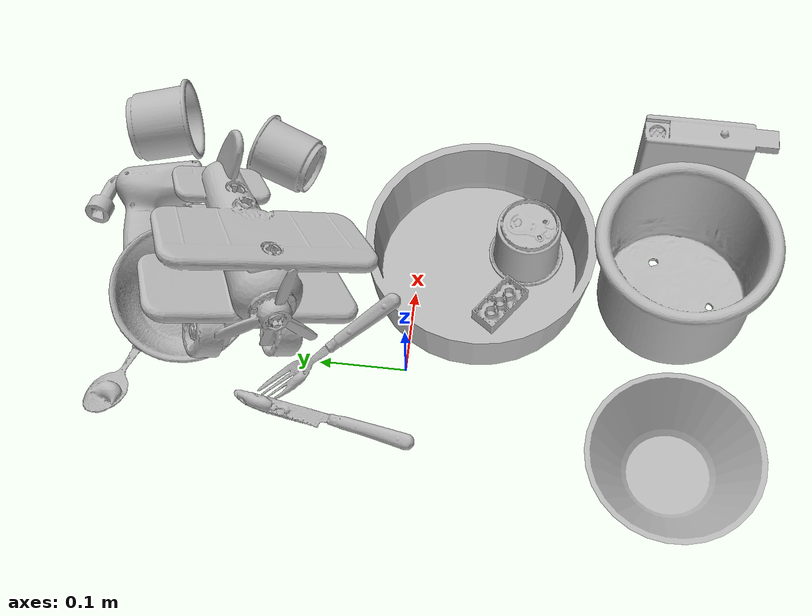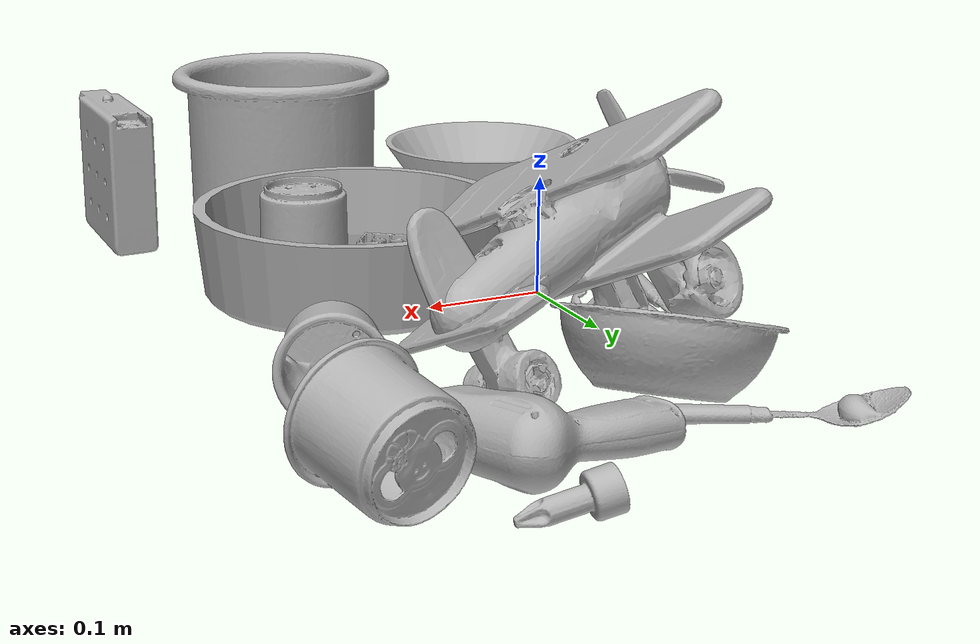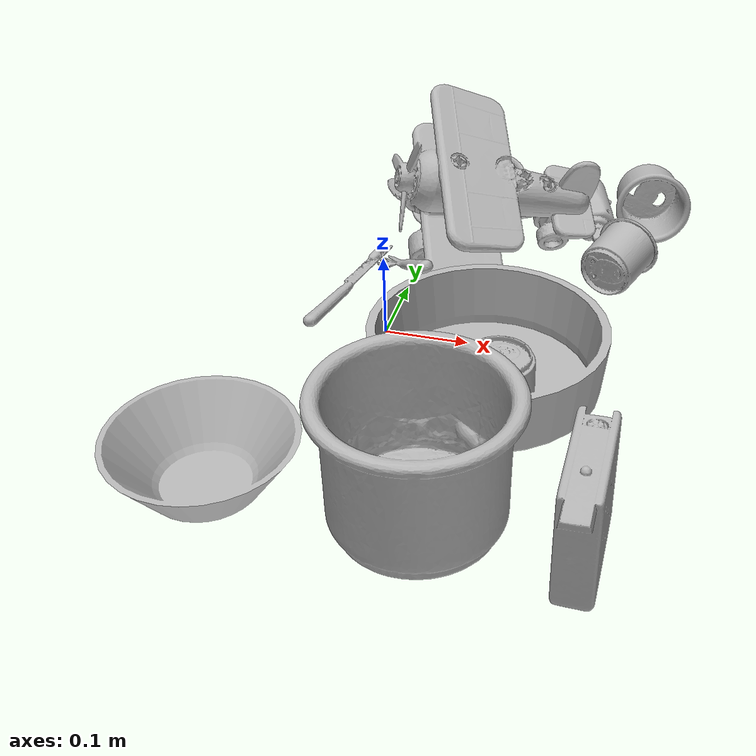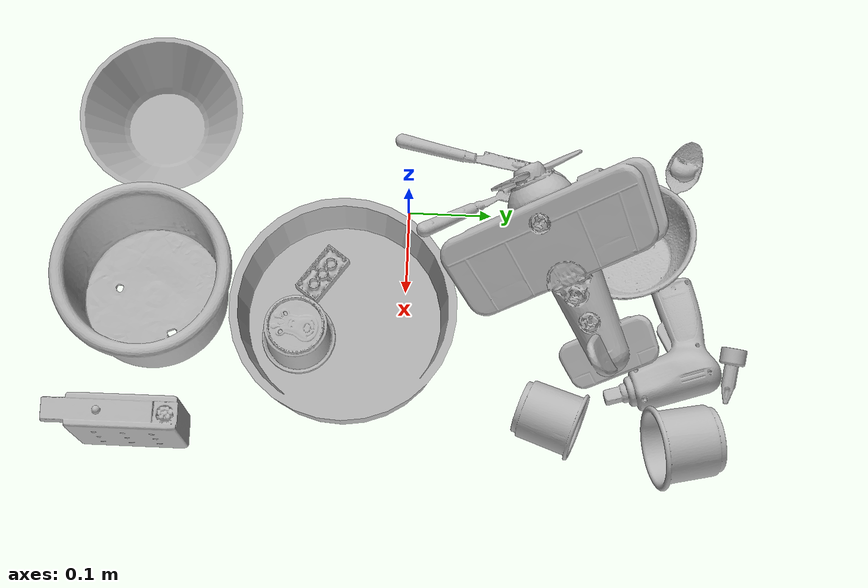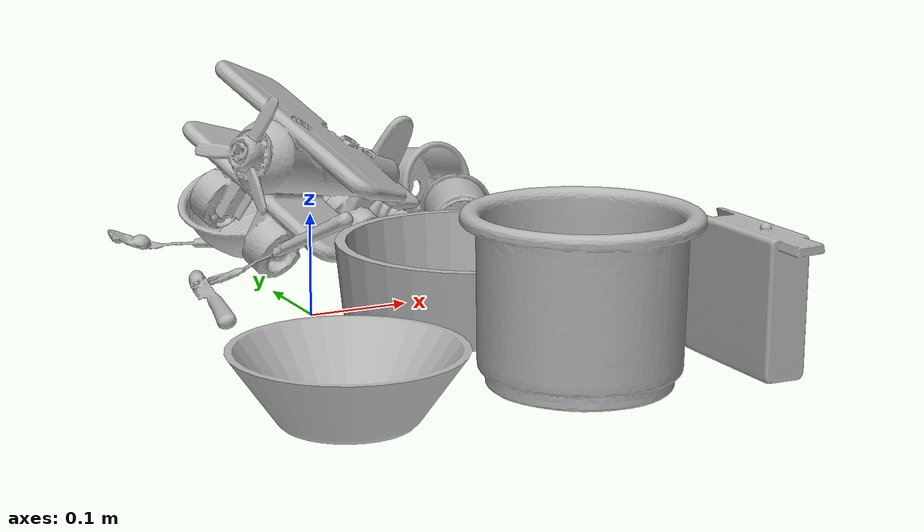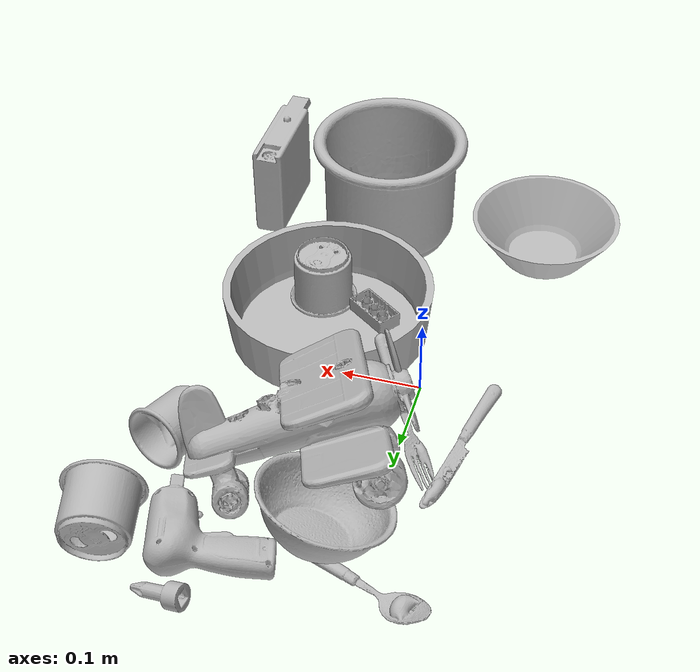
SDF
<sdf version="1.4">
  <world name="default">
    <light name="light1" type="point">
      <pose>0 0 1 0 0 0</pose>
      <diffuse>3 3 3 1</diffuse>
      <specular>3 3 3 1</specular>
    </light>
    <light name="light2" type="point">
      <pose>0 0.5 2 0 0 0</pose>
      <diffuse>1 1 1 1</diffuse>
      <specular>1 1 1 1</specular>
    </light>
    <light name="light3" type="point">
      <pose>0 0.5 2 0 0 0</pose>
      <diffuse>3 3 3 1</diffuse>
      <specular>3 3 3 1</specular>
    </light>
    <scene>
      <ambient>0.7 0.7 0.7</ambient>
    </scene>
    <model name="plate1">
      <link name="link_plate1">
        <collision name="default">
          <geometry>
            <mesh>
              <uri>model://pan_tefal/collision_meshes/collision.obj</uri>
              <scale>1.0 1.0 1.0</scale>
            </mesh>
          </geometry>
          <surface>
            <friction>
              <ode>
                <mu>0.5</mu>
                <mu2>0.5</mu2>
              </ode>
            </friction>
          <contact>
        <ode>
            <max_vel>0</max_vel>
            <min_depth>0.0001</min_depth>
            <kp>1e8</kp>
        </ode>
    </contact></surface>
        </collision>
        <visual name="default">
          <geometry>
            <mesh>
              <uri>model://pan_tefal/visual_meshes/visual.dae</uri>
              <scale>1.0 1.0 1.0</scale>
            </mesh>
          </geometry>
        </visual>
        <inertial>
          <mass>1.2414644956588745</mass>
          <pose>-0.0001800298341549933 3.278589065303095e-05 -0.00851493515074253 0.0008190165640447202 -0.0003301348973125405 -0.33185319573483557</pose>
          <inertia>
            <ixx>0.00856977</ixx>
            <iyy>0.008625018</iyy>
            <izz>0.015775295</izz>
            <ixy>0</ixy>
            <ixz>0</ixz>
            <iyz>0</iyz>
          </inertia>
        </inertial>
      </link>
      <pose>0.13853561878204346 -0.07104324549436569 0.038050003349781036 -1.0277268653726338e-08 3.07782101069081e-08 0.6571660322161916</pose>
    </model>
    <model name="cup1">
      <link name="link_cup1">
        <collision name="default">
          <geometry>
            <mesh>
              <uri>model://j_cups/collision_meshes/collision.obj</uri>
              <scale>2.0 2.0 2.0</scale>
            </mesh>
          </geometry>
          <surface>
            <friction>
              <ode>
                <mu>0.5</mu>
                <mu2>0.5</mu2>
              </ode>
            </friction>
          <contact>
        <ode>
            <max_vel>0</max_vel>
            <min_depth>0.0001</min_depth>
            <kp>1e8</kp>
        </ode>
    </contact></surface>
        </collision>
        <visual name="default">
          <geometry>
            <mesh>
              <uri>model://j_cups/visual_meshes/visual.dae</uri>
              <scale>2.0 2.0 2.0</scale>
            </mesh>
          </geometry>
        </visual>
        <inertial>
          <mass>0.42814481258392334</mass>
          <pose>0.0012329709716141224 0.0010797895956784487 -0.002695801667869091 0.030303634199985552 0.037580068488308346 0.43868666904956827</pose>
          <inertia>
            <ixx>0.0025146077</ixx>
            <iyy>0.0025407567</iyy>
            <izz>0.0028988216</izz>
            <ixy>0</ixy>
            <ixz>0</ixz>
            <iyz>0</iyz>
          </inertia>
        </inertial>
      </link>
      <pose>0.12036195397377014 -0.29757559299468994 0.07597799599170685 1.5375587551067217e-08 -6.754720383126846e-08 1.1005910182369152</pose>
    </model>
    <model name="silverware1">
      <link name="link_silverware1">
        <collision name="default">
          <geometry>
            <mesh>
              <uri>model://fork/collision_meshes/collision.obj</uri>
              <scale>1.0 1.0 1.0</scale>
            </mesh>
          </geometry>
          <surface>
            <friction>
              <ode>
                <mu>0.5</mu>
                <mu2>0.5</mu2>
              </ode>
            </friction>
          <contact>
        <ode>
            <max_vel>0</max_vel>
            <min_depth>0.0001</min_depth>
            <kp>1e8</kp>
        </ode>
    </contact></surface>
        </collision>
        <visual name="default">
          <geometry>
            <mesh>
              <uri>model://fork/visual_meshes/visual.dae</uri>
              <scale>1.0 1.0 1.0</scale>
            </mesh>
          </geometry>
        </visual>
        <inertial>
          <mass>0.013809523545205593</mass>
          <pose>-0.029570044949650764 0.0004658822435885668 0.00032188615296036005 -0.013551743215227608 -0.010977837587661193 0.014453899243146438</pose>
          <inertia>
            <ixx>4.84102e-07</ixx>
            <iyy>3.6052697e-05</iyy>
            <izz>3.6269223e-05</izz>
            <ixy>0</ixy>
            <ixz>0</ixz>
            <iyz>0</iyz>
          </inertia>
        </inertial>
      </link>
      <pose>-3.389082849025726e-05 0.0853070467710495 0.042986802756786346 -0.1720779266581978 0.4915731306213642 2.158712578629055</pose>
    </model>
    <model name="silverware2">
      <link name="link_silverware2">
        <collision name="default">
          <geometry>
            <mesh>
              <uri>model://knife/collision_meshes/collision.obj</uri>
              <scale>1.0 1.0 1.0</scale>
            </mesh>
          </geometry>
          <surface>
            <friction>
              <ode>
                <mu>0.5</mu>
                <mu2>0.5</mu2>
              </ode>
            </friction>
          <contact>
        <ode>
            <max_vel>0</max_vel>
            <min_depth>0.0001</min_depth>
            <kp>1e8</kp>
        </ode>
    </contact></surface>
        </collision>
        <visual name="default">
          <geometry>
            <mesh>
              <uri>model://knife/visual_meshes/visual.dae</uri>
              <scale>1.0 1.0 1.0</scale>
            </mesh>
          </geometry>
        </visual>
        <inertial>
          <mass>0.021972408518195152</mass>
          <pose>-0.023785250261425972 0.0015275123296305537 5.0620161346159875e-05 0.07305788583029697 0.01724841890740089 -0.007409824444555058</pose>
          <inertia>
            <ixx>6.2366604e-07</ixx>
            <iyy>8.441444e-05</iyy>
            <izz>8.46153e-05</izz>
            <ixy>0</ixy>
            <ixz>0</ixz>
            <iyz>0</iyz>
          </inertia>
        </inertial>
      </link>
      <pose>-0.07282426953315735 0.08596955984830856 0.005845934152603149 2.880436081520243 0.025318182085621314 1.382429017965285</pose>
    </model>
    <model name="silverware3">
      <link name="link_silverware3">
        <collision name="default">
          <geometry>
            <mesh>
              <uri>model://spoon/collision_meshes/collision.obj</uri>
              <scale>1.0 1.0 1.0</scale>
            </mesh>
          </geometry>
          <surface>
            <friction>
              <ode>
                <mu>0.5</mu>
                <mu2>0.5</mu2>
              </ode>
            </friction>
          <contact>
        <ode>
            <max_vel>0</max_vel>
            <min_depth>0.0001</min_depth>
            <kp>1e8</kp>
        </ode>
    </contact></surface>
        </collision>
        <visual name="default">
          <geometry>
            <mesh>
              <uri>model://spoon/visual_meshes/visual.dae</uri>
              <scale>1.0 1.0 1.0</scale>
            </mesh>
          </geometry>
        </visual>
        <inertial>
          <mass>0.026694269850850105</mass>
          <pose>-0.005526325199753046 -0.0016034168656915426 -0.0007271653739735484 0.035216710718480135 -0.03906584501417282 0.00615060951780049</pose>
          <inertia>
            <ixx>1.484779e-06</ixx>
            <iyy>0.000101570804</iyy>
            <izz>0.000102303035</izz>
            <ixy>0</ixy>
            <ixz>0</ixz>
            <iyz>0</iyz>
          </inertia>
        </inertial>
      </link>
      <pose>-0.007980858907103539 0.3091663122177124 0.008385262452065945 0.006729118480922514 0.026892968451171426 2.7751250977209154</pose>
    </model>
    <model name="cup3">
      <link name="link_cup3">
        <collision name="default">
          <geometry>
            <mesh>
              <uri>model://f_cups/collision_meshes/collision.obj</uri>
              <scale>1.0 1.0 1.0</scale>
            </mesh>
          </geometry>
          <surface>
            <friction>
              <ode>
                <mu>0.5</mu>
                <mu2>0.5</mu2>
              </ode>
            </friction>
          <contact>
        <ode>
            <max_vel>0</max_vel>
            <min_depth>0.0001</min_depth>
            <kp>1e8</kp>
        </ode>
    </contact></surface>
        </collision>
        <visual name="default">
          <geometry>
            <mesh>
              <uri>model://f_cups/visual_meshes/visual.dae</uri>
              <scale>1.0 1.0 1.0</scale>
            </mesh>
          </geometry>
        </visual>
        <inertial>
          <mass>0.09255705773830414</mass>
          <pose>-0.0031714672222733498 -0.0006240062648430467 -0.0036555363330990076 0.7862294428046025 -0.26079256257201844 -0.18237393521905715</pose>
          <inertia>
            <ixx>8.700612e-05</ixx>
            <iyy>9.127041e-05</iyy>
            <izz>9.501506e-05</izz>
            <ixy>0</ixy>
            <ixz>0</ixz>
            <iyz>0</iyz>
          </inertia>
        </inertial>
      </link>
      <pose>0.2504325807094574 0.17254196107387543 0.037158966064453125 1.440482371977233 -0.8178152064597399 2.887140721977386</pose>
    </model>
    <model name="cup4">
      <link name="link_cup4">
        <collision name="default">
          <geometry>
            <mesh>
              <uri>model://g_cups/collision_meshes/collision.obj</uri>
              <scale>1.0 1.0 1.0</scale>
            </mesh>
          </geometry>
          <surface>
            <friction>
              <ode>
                <mu>0.5</mu>
                <mu2>0.5</mu2>
              </ode>
            </friction>
          <contact>
        <ode>
            <max_vel>0</max_vel>
            <min_depth>0.0001</min_depth>
            <kp>1e8</kp>
        </ode>
    </contact></surface>
        </collision>
        <visual name="default">
          <geometry>
            <mesh>
              <uri>model://g_cups/visual_meshes/visual.dae</uri>
              <scale>1.0 1.0 1.0</scale>
            </mesh>
          </geometry>
        </visual>
        <inertial>
          <mass>0.09045539051294327</mass>
          <pose>-0.0007946272380650043 -4.206356970826164e-05 -0.0021329366136342287 -0.21382427470227655 -0.31410603394020525 0.31120189460551634</pose>
          <inertia>
            <ixx>0.000105581705</ixx>
            <iyy>0.000105222556</iyy>
            <izz>0.000109364446</izz>
            <ixy>0</ixy>
            <ixz>0</ixz>
            <iyz>0</iyz>
          </inertia>
        </inertial>
      </link>
      <pose>0.16257542371749878 -0.12451474368572235 0.04475902020931244 3.1390757266993767 -0.0009050775068456375 3.0403901791496906</pose>
    </model>
    <model name="cup5">
      <link name="link_cup5">
        <collision name="default">
          <geometry>
            <mesh>
              <uri>model://i_cups/collision_meshes/collision.obj</uri>
              <scale>1.0 1.0 1.0</scale>
            </mesh>
          </geometry>
          <surface>
            <friction>
              <ode>
                <mu>0.5</mu>
                <mu2>0.5</mu2>
              </ode>
            </friction>
          <contact>
        <ode>
            <max_vel>0</max_vel>
            <min_depth>0.0001</min_depth>
            <kp>1e8</kp>
        </ode>
    </contact></surface>
        </collision>
        <visual name="default">
          <geometry>
            <mesh>
              <uri>model://i_cups/visual_meshes/visual.dae</uri>
              <scale>1.0 1.0 1.0</scale>
            </mesh>
          </geometry>
        </visual>
        <inertial>
          <mass>0.0815454050898552</mass>
          <pose>0.0001123997790273279 0.00016797320859041065 -0.0008579009445384145 -0.02898318353055437 -0.03987301779891007 -0.3459082462056558</pose>
          <inertia>
            <ixx>0.0001129008</ixx>
            <iyy>0.000113895556</iyy>
            <izz>0.00012618494</izz>
            <ixy>0</ixy>
            <ixz>0</ixz>
            <iyz>0</iyz>
          </inertia>
        </inertial>
      </link>
      <pose>0.2769671678543091 0.3284604549407959 0.04508911073207855 -1.4027187878217617 -0.7346731525647001 -3.0402881245757407</pose>
    </model>
    <model name="bowl1">
      <link name="link_bowl1">
        <collision name="default">
          <geometry>
            <mesh>
              <uri>model://bowl/collision_meshes/collision.obj</uri>
              <scale>1.0 1.0 1.0</scale>
            </mesh>
          </geometry>
          <surface>
            <friction>
              <ode>
                <mu>0.5</mu>
                <mu2>0.5</mu2>
              </ode>
            </friction>
          <contact>
        <ode>
            <max_vel>0</max_vel>
            <min_depth>0.0001</min_depth>
            <kp>1e8</kp>
        </ode>
    </contact></surface>
        </collision>
        <visual name="default">
          <geometry>
            <mesh>
              <uri>model://bowl/visual_meshes/visual.dae</uri>
              <scale>1.0 1.0 1.0</scale>
            </mesh>
          </geometry>
        </visual>
        <inertial>
          <mass>0.1349102407693863</mass>
          <pose>0.00020445192058105022 -0.0010302069131284952 -0.0008042648551054299 -0.01576408127006171 0.01454679335072616 0.7140405111038781</pose>
          <inertia>
            <ixx>0.00030989948</ixx>
            <iyy>0.00030297515</iyy>
            <izz>0.0005213576</izz>
            <ixy>0</ixy>
            <ixz>0</ixz>
            <iyz>0</iyz>
          </inertia>
        </inertial>
      </link>
      <pose>0.04561837017536163 0.2648700475692749 0.04118546098470688 0.24226021697241143 0.2633026880789279 -1.5892987798862641</pose>
    </model>
    <model name="bowl2">
      <link name="link_bowl2">
        <collision name="default">
          <geometry>
            <mesh>
              <uri>model://bowl_a/collision_meshes/collision.obj</uri>
              <scale>1.0 1.0 1.0</scale>
            </mesh>
          </geometry>
          <surface>
            <friction>
              <ode>
                <mu>0.5</mu>
                <mu2>0.5</mu2>
              </ode>
            </friction>
          <contact>
        <ode>
            <max_vel>0</max_vel>
            <min_depth>0.0001</min_depth>
            <kp>1e8</kp>
        </ode>
    </contact></surface>
        </collision>
        <visual name="default">
          <geometry>
            <mesh>
              <uri>model://bowl_a/visual_meshes/visual.dae</uri>
              <scale>1.0 1.0 1.0</scale>
            </mesh>
          </geometry>
        </visual>
        <inertial>
          <mass>0.4816342294216156</mass>
          <pose>0.000278677063761279 4.73155923828017e-05 -0.0013765296898782253 -0.0009805427744981278 -0.0010938171301827632 -0.19123023792191385</pose>
          <inertia>
            <ixx>0.0013712347</ixx>
            <iyy>0.0013796532</iyy>
            <izz>0.0024387941</izz>
            <ixy>0</ixy>
            <ixz>0</ixz>
            <iyz>0</iyz>
          </inertia>
        </inertial>
      </link>
      <pose>-0.0952620878815651 -0.3014206290245056 0.030383000150322914 -5.7176458699570476e-08 -1.5910524592378732e-09 2.8595532772598307</pose>
    </model>
    <model name="toy1">
      <link name="link_toy1">
        <collision name="default">
          <geometry>
            <mesh>
              <uri>model://a_toy_airplane/collision_meshes/collision.obj</uri>
              <scale>1.0 1.0 1.0</scale>
            </mesh>
          </geometry>
          <surface>
            <friction>
              <ode>
                <mu>0.5</mu>
                <mu2>0.5</mu2>
              </ode>
            </friction>
          <contact>
        <ode>
            <max_vel>0</max_vel>
            <min_depth>0.0001</min_depth>
            <kp>1e8</kp>
        </ode>
    </contact></surface>
        </collision>
        <visual name="default">
          <geometry>
            <mesh>
              <uri>model://a_toy_airplane/visual_meshes/visual.dae</uri>
              <scale>1.0 1.0 1.0</scale>
            </mesh>
          </geometry>
        </visual>
        <inertial>
          <mass>1.6936675310134888</mass>
          <pose>0.025165095925331116 -0.0037073225248605013 -0.0011962444987148046 -0.01201699252327453 -0.146634996228158 0.004149091382990828</pose>
          <inertia>
            <ixx>0.0061505185</ixx>
            <iyy>0.008962553</iyy>
            <izz>0.010494047</izz>
            <ixy>0</ixy>
            <ixz>0</ixz>
            <iyz>0</iyz>
          </inertia>
        </inertial>
      </link>
      <pose>0.09259553253650665 0.1886478215456009 0.10074616968631744 -0.4493624104200299 -0.08843932256312097 -2.750860732012676</pose>
    </model>
    <model name="toy2">
      <link name="link_toy2">
        <collision name="default">
          <geometry>
            <mesh>
              <uri>model://c_lego_duplo/collision_meshes/collision.obj</uri>
              <scale>1.0 1.0 1.0</scale>
            </mesh>
          </geometry>
          <surface>
            <friction>
              <ode>
                <mu>0.5</mu>
                <mu2>0.5</mu2>
              </ode>
            </friction>
          <contact>
        <ode>
            <max_vel>0</max_vel>
            <min_depth>0.0001</min_depth>
            <kp>1e8</kp>
        </ode>
    </contact></surface>
        </collision>
        <visual name="default">
          <geometry>
            <mesh>
              <uri>model://c_lego_duplo/visual_meshes/visual.dae</uri>
              <scale>1.0 1.0 1.0</scale>
            </mesh>
          </geometry>
        </visual>
        <inertial>
          <mass>0.01636073924601078</mass>
          <pose>0.000316459103487432 0.0001946457487065345 0.001045315177179873 -0.01152079658800189 0.005900071110555828 0.03110036538654021</pose>
          <inertia>
            <ixx>6.295917e-06</ixx>
            <iyy>2.0111436e-06</iyy>
            <izz>7.357428e-06</izz>
            <ixy>0</ixy>
            <ixz>0</ixz>
            <iyz>0</iyz>
          </inertia>
        </inertial>
      </link>
      <pose>0.08629181981086731 -0.09961990267038345 0.019489826634526253 -3.139971317888196 -0.0013073359704931103 0.9678971500686776</pose>
    </model>
    <model name="toy3">
      <link name="link_toy3">
        <collision name="default">
          <geometry>
            <mesh>
              <uri>model://nine_hole_peg_test/collision_meshes/collision.obj</uri>
              <scale>1.0 1.0 1.0</scale>
            </mesh>
          </geometry>
          <surface>
            <friction>
              <ode>
                <mu>0.5</mu>
                <mu2>0.5</mu2>
              </ode>
            </friction>
          <contact>
        <ode>
            <max_vel>0</max_vel>
            <min_depth>0.0001</min_depth>
            <kp>1e8</kp>
        </ode>
    </contact></surface>
        </collision>
        <visual name="default">
          <geometry>
            <mesh>
              <uri>model://nine_hole_peg_test/visual_meshes/visual.dae</uri>
              <scale>1.0 1.0 1.0</scale>
            </mesh>
          </geometry>
        </visual>
        <inertial>
          <mass>0.9464474320411682</mass>
          <pose>-0.004617386497557163 -0.009647613391280174 2.646068787726108e-05 -0.0014666793204268175 0.0007194166079670136 -0.6342420609245715</pose>
          <inertia>
            <ixx>0.0014799263</ixx>
            <iyy>0.0013817915</iyy>
            <izz>0.002593267</izz>
            <ixy>0</ixy>
            <ixz>0</ixz>
            <iyz>0</iyz>
          </inertia>
        </inertial>
      </link>
      <pose>0.27888697385787964 -0.32053208351135254 0.06864652782678604 -1.5295512828049262 -1.563801293848726 -1.6115178012414848</pose>
    </model>
    <model name="toy4">
      <link name="link_toy4">
        <collision name="default">
          <geometry>
            <mesh>
              <uri>model://d_toy_airplane/collision_meshes/collision.obj</uri>
              <scale>1.0 1.0 1.0</scale>
            </mesh>
          </geometry>
          <surface>
            <friction>
              <ode>
                <mu>0.5</mu>
                <mu2>0.5</mu2>
              </ode>
            </friction>
          <contact>
        <ode>
            <max_vel>0</max_vel>
            <min_depth>0.0001</min_depth>
            <kp>1e8</kp>
        </ode>
    </contact></surface>
        </collision>
        <visual name="default">
          <geometry>
            <mesh>
              <uri>model://d_toy_airplane/visual_meshes/visual.dae</uri>
              <scale>1.0 1.0 1.0</scale>
            </mesh>
          </geometry>
        </visual>
        <inertial>
          <mass>0.021776849403977394</mass>
          <pose>9.410295024281368e-05 -5.809321373817511e-05 -0.011728097684681416 0.0002661671660100631 0.004679022103859929 0.519291232465637</pose>
          <inertia>
            <ixx>6.5282748e-06</ixx>
            <iyy>6.5331997e-06</iyy>
            <izz>1.9709291e-06</izz>
            <ixy>0</ixy>
            <ixz>0</ixz>
            <iyz>0</iyz>
          </inertia>
        </inertial>
      </link>
      <pose>0.18842992186546326 0.3872351348400116 0.01123465970158577 1.7944117773424408 -0.19707220116928847 1.3829811682130775</pose>
    </model>
    <model name="toy5">
      <link name="link_toy5">
        <collision name="default">
          <geometry>
            <mesh>
              <uri>model://b_toy_airplane/collision_meshes/collision.obj</uri>
              <scale>1.0 1.0 1.0</scale>
            </mesh>
          </geometry>
          <surface>
            <friction>
              <ode>
                <mu>0.5</mu>
                <mu2>0.5</mu2>
              </ode>
            </friction>
          <contact>
        <ode>
            <max_vel>0</max_vel>
            <min_depth>0.0001</min_depth>
            <kp>1e8</kp>
        </ode>
    </contact></surface>
        </collision>
        <visual name="default">
          <geometry>
            <mesh>
              <uri>model://b_toy_airplane/visual_meshes/visual.dae</uri>
              <scale>1.0 1.0 1.0</scale>
            </mesh>
          </geometry>
        </visual>
        <inertial>
          <mass>0.25237053632736206</mass>
          <pose>0.00508136348798871 0.004015584476292133 0.00954306498169899 -0.04001808288480986 -0.0402218063825515 -0.5601503558886168</pose>
          <inertia>
            <ixx>0.00046853055</ixx>
            <iyy>0.00018727628</iyy>
            <izz>0.0005828988</izz>
            <ixy>0</ixy>
            <ixz>0</ixz>
            <iyz>0</iyz>
          </inertia>
        </inertial>
      </link>
      <pose>0.16960929334163666 0.32362380623817444 0.016977880150079727 0.18487657338566008 0.11349919107165811 -1.2708178787087137</pose>
    </model>
  <physics type="ode">
      <max_contacts>50</max_contacts>
      <ode>
        <solver>
          <type>quick</type>
          <iters>75</iters>
        </solver>
        <constraints>
          <contact_max_correcting_vel>0</contact_max_correcting_vel>
          <contact_surface_layer>0</contact_surface_layer>
        </constraints>
      </ode>
    </physics></world>
</sdf>
